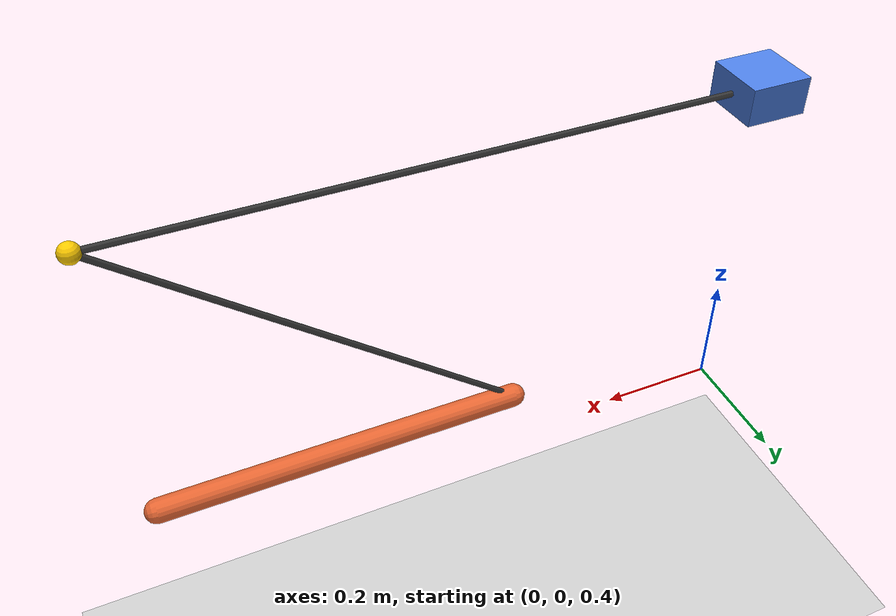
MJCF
<mujoco model="tendon_capstone">

  <!-- dt=0.001s matches pendulum.xml and planar_rr_arm.xml conventions -->
  <option timestep="0.001" gravity="0 0 -9.81"/>

  <worldbody>
    <!-- Angled light to illuminate the tendon path and lever geometry -->
    <light pos="0.5 -1 2" dir="0 0.5 -1"/>

    <!-- Floor plane: visual reference for depth perception -->
    <geom name="floor" type="plane" size="2 2 0.1" rgba="0.8 0.8 0.8 1"/>

    <body name="block" pos="0.0 0 1.0">
      <joint name="block_slide" type="slide" axis="1 0 0"
             range="-1.0 0.5" damping="0.5" armature="0.01"/>
      <geom type="box" size="0.05 0.05 0.03" mass="0.5" rgba="0.3 0.5 0.9 1"/>
      <site name="block_anchor" pos="0 0 0" size="0.01"/>
    </body>

    <site name="corner_pulley" pos="1.0 0 1.0" size="0.015" rgba="1 0.8 0 1"/>

    <body name="lever" pos="1.0 0 0.5">
      <joint name="lever_hinge" type="hinge" axis="0 1 0"
             range="-86 86" damping="0.2" armature="0.005"/>
      <geom type="capsule" fromto="0 0 0 -0.6 0 0"
            size="0.02" mass="0.3" rgba="0.9 0.4 0.2 1"/>
      <site name="lever_tip" pos="-0.6 0 0" size="0.01"/>
    </body>
  </worldbody>

  <tendon>
    <spatial name="cable" stiffness="200" springlength="0 1.7810"
             width="0.005" rgba="0.2 0.2 0.2 1">
      <site site="block_anchor"/>    <!-- 1. cable departs from block on ceiling -->
      <site site="corner_pulley"/>   <!-- 2. fixed pulley redirects cable 90 degrees at corner -->
      <site site="lever_tip"/>       <!-- 3. cable attaches to lever tip on right wall -->
    </spatial>
  </tendon>

  <actuator>
    <motor name="block_motor" joint="block_slide" gear="1" ctrlrange="-100 100"/>

    <motor name="hinge_motor" joint="lever_hinge" gear="1" ctrlrange="-10 10"/>
  </actuator>
</mujoco>
